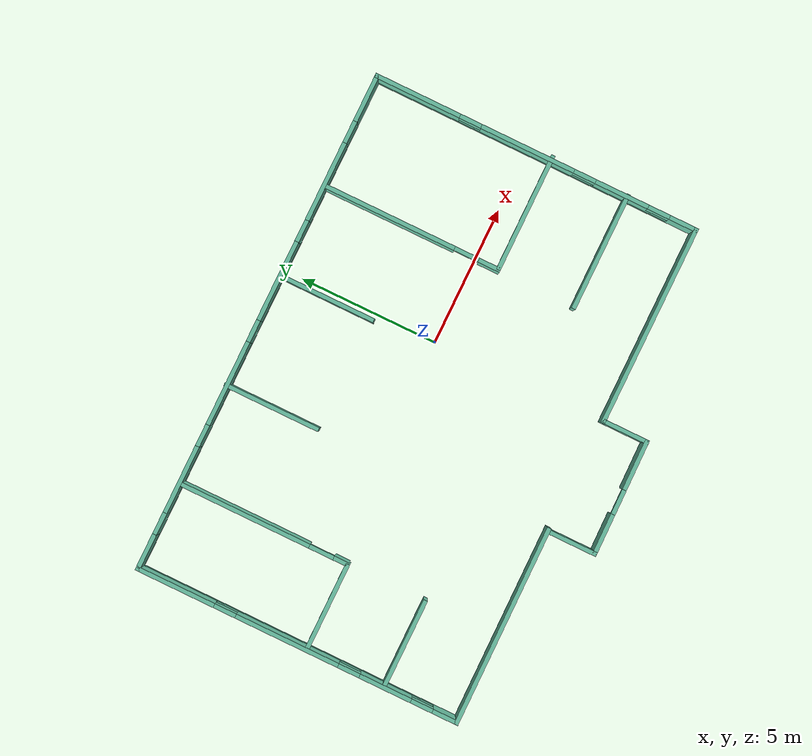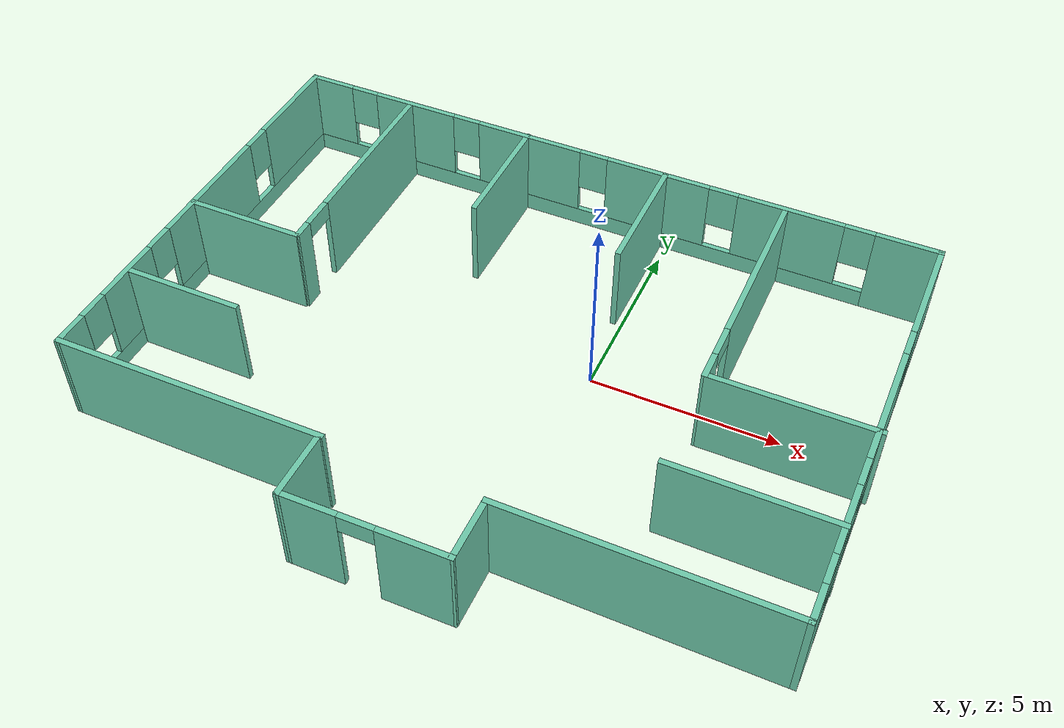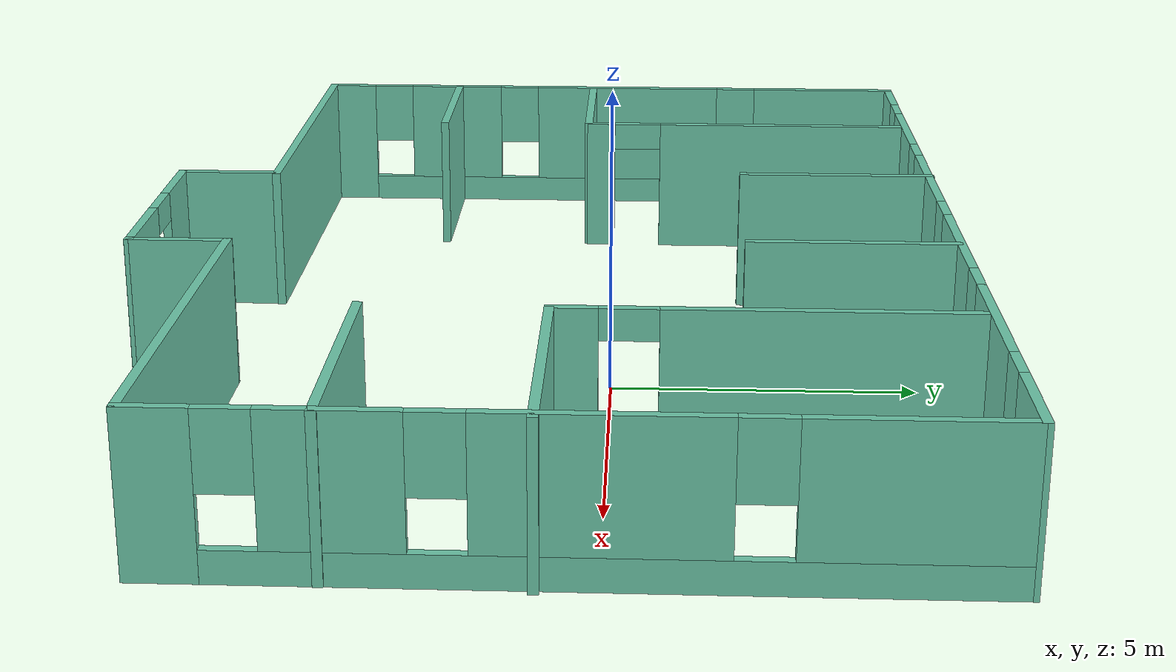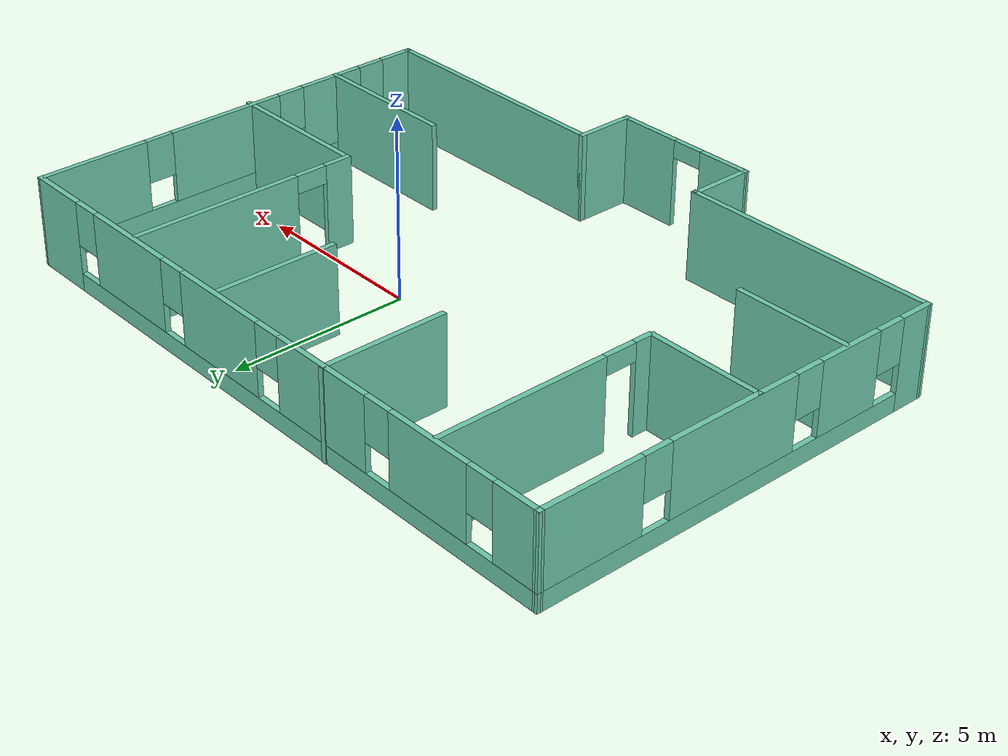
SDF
<?xml version='1.0'?>
<sdf version='1.6'>
  <model name='ER_building'>
    <pose frame=''>-1.93816 -1.11842 0 0 -0 0</pose>
    <link name='Wall_10'>
      <collision name='Wall_10_Collision'>
        <geometry>
          <box>
            <size>7.29057 0.15 2.5</size>
          </box>
        </geometry>
        <pose frame=''>0 0 1.25 0 -0 0</pose>
      </collision>
      <visual name='Wall_10_Visual'>
        <pose frame=''>0 0 1.25 0 -0 0</pose>
        <geometry>
          <box>
            <size>7.29057 0.15 2.5</size>
          </box>
        </geometry>
        <material>
          <script>
            <uri>file://media/materials/scripts/gazebo.material</uri>
            <name>Gazebo/Grey</name>
          </script>
          <ambient>0.435294 0.796078 0.67451 1</ambient>
        </material>
        <meta>
          <layer>0</layer>
        </meta>
      </visual>
      <pose frame=''>-5.64334 -5.06011 0 0 0 -3.13593</pose>
    </link>
    <link name='Wall_11'>
      <pose frame=''>-9.21357 0.84466 0 0 -0 1.5708</pose>
      <visual name='Wall_11_Visual_0'>
        <pose frame=''>-5.51337 0 1.25 0 -0 0</pose>
        <geometry>
          <box>
            <size>0.973269 0.15 2.5</size>
          </box>
        </geometry>
        <material>
          <script>
            <uri>file://media/materials/scripts/gazebo.material</uri>
            <name>Gazebo/Grey</name>
          </script>
          <ambient>0.435294 0.796078 0.67451 1</ambient>
        </material>
        <meta>
          <layer>0</layer>
        </meta>
      </visual>
      <collision name='Wall_11_Collision_0'>
        <geometry>
          <box>
            <size>0.973269 0.15 2.5</size>
          </box>
        </geometry>
        <pose frame=''>-5.51337 0 1.25 0 -0 0</pose>
      </collision>
      <visual name='Wall_11_Visual_1'>
        <pose frame=''>0.486634 0 0.25 0 -0 0</pose>
        <geometry>
          <box>
            <size>11.0267 0.15 0.5</size>
          </box>
        </geometry>
        <material>
          <script>
            <uri>file://media/materials/scripts/gazebo.material</uri>
            <name>Gazebo/Grey</name>
          </script>
          <ambient>0.435294 0.796078 0.67451 1</ambient>
        </material>
        <meta>
          <layer>0</layer>
        </meta>
      </visual>
      <collision name='Wall_11_Collision_1'>
        <geometry>
          <box>
            <size>11.0267 0.15 0.5</size>
          </box>
        </geometry>
        <pose frame=''>0.486634 0 0.25 0 -0 0</pose>
      </collision>
      <visual name='Wall_11_Visual_2'>
        <pose frame=''>-3.27147 0 1.5 0 -0 0</pose>
        <geometry>
          <box>
            <size>1.91052 0.15 2</size>
          </box>
        </geometry>
        <material>
          <script>
            <uri>file://media/materials/scripts/gazebo.material</uri>
            <name>Gazebo/Grey</name>
          </script>
          <ambient>0.435294 0.796078 0.67451 1</ambient>
        </material>
        <meta>
          <layer>0</layer>
        </meta>
      </visual>
      <collision name='Wall_11_Collision_2'>
        <geometry>
          <box>
            <size>1.91052 0.15 2</size>
          </box>
        </geometry>
        <pose frame=''>-3.27147 0 1.5 0 -0 0</pose>
      </collision>
      <visual name='Wall_11_Visual_3'>
        <pose frame=''>0.38976 0 1.5 0 -0 0</pose>
        <geometry>
          <box>
            <size>3.81194 0.15 2</size>
          </box>
        </geometry>
        <material>
          <script>
            <uri>file://media/materials/scripts/gazebo.material</uri>
            <name>Gazebo/Grey</name>
          </script>
          <ambient>0.435294 0.796078 0.67451 1</ambient>
        </material>
        <meta>
          <layer>0</layer>
        </meta>
      </visual>
      <collision name='Wall_11_Collision_3'>
        <geometry>
          <box>
            <size>3.81194 0.15 2</size>
          </box>
        </geometry>
        <pose frame=''>0.38976 0 1.5 0 -0 0</pose>
      </collision>
      <visual name='Wall_11_Visual_4'>
        <pose frame=''>4.54786 0 1.5 0 -0 0</pose>
        <geometry>
          <box>
            <size>2.90427 0.15 2</size>
          </box>
        </geometry>
        <material>
          <script>
            <uri>file://media/materials/scripts/gazebo.material</uri>
            <name>Gazebo/Grey</name>
          </script>
          <ambient>0.435294 0.796078 0.67451 1</ambient>
        </material>
        <meta>
          <layer>0</layer>
        </meta>
      </visual>
      <collision name='Wall_11_Collision_4'>
        <geometry>
          <box>
            <size>2.90427 0.15 2</size>
          </box>
        </geometry>
        <pose frame=''>4.54786 0 1.5 0 -0 0</pose>
      </collision>
      <visual name='Wall_11_Visual_5'>
        <pose frame=''>-4.62673 0 1.9 0 -0 0</pose>
        <geometry>
          <box>
            <size>0.8 0.15 1.2</size>
          </box>
        </geometry>
        <material>
          <script>
            <uri>file://media/materials/scripts/gazebo.material</uri>
            <name>Gazebo/Grey</name>
          </script>
          <ambient>0.435294 0.796078 0.67451 1</ambient>
        </material>
        <meta>
          <layer>0</layer>
        </meta>
      </visual>
      <collision name='Wall_11_Collision_5'>
        <geometry>
          <box>
            <size>0.8 0.15 1.2</size>
          </box>
        </geometry>
        <pose frame=''>-4.62673 0 1.9 0 -0 0</pose>
      </collision>
      <visual name='Wall_11_Visual_6'>
        <pose frame=''>-1.91621 0 1.9 0 -0 0</pose>
        <geometry>
          <box>
            <size>0.8 0.15 1.2</size>
          </box>
        </geometry>
        <material>
          <script>
            <uri>file://media/materials/scripts/gazebo.material</uri>
            <name>Gazebo/Grey</name>
          </script>
          <ambient>0.435294 0.796078 0.67451 1</ambient>
        </material>
        <meta>
          <layer>0</layer>
        </meta>
      </visual>
      <collision name='Wall_11_Collision_6'>
        <geometry>
          <box>
            <size>0.8 0.15 1.2</size>
          </box>
        </geometry>
        <pose frame=''>-1.91621 0 1.9 0 -0 0</pose>
      </collision>
      <visual name='Wall_11_Visual_7'>
        <pose frame=''>2.69573 0 1.9 0 -0 0</pose>
        <geometry>
          <box>
            <size>0.8 0.15 1.2</size>
          </box>
        </geometry>
        <material>
          <script>
            <uri>file://media/materials/scripts/gazebo.material</uri>
            <name>Gazebo/Grey</name>
          </script>
          <ambient>0.435294 0.796078 0.67451 1</ambient>
        </material>
        <meta>
          <layer>0</layer>
        </meta>
      </visual>
      <collision name='Wall_11_Collision_7'>
        <geometry>
          <box>
            <size>0.8 0.15 1.2</size>
          </box>
        </geometry>
        <pose frame=''>2.69573 0 1.9 0 -0 0</pose>
      </collision>
    </link>
    <link name='Wall_14'>
      <collision name='Wall_14_Collision'>
        <geometry>
          <box>
            <size>7.25 0.15 2.5</size>
          </box>
        </geometry>
        <pose frame=''>0 0 1.25 0 -0 0</pose>
      </collision>
      <visual name='Wall_14_Visual'>
        <pose frame=''>0 0 1.25 0 -0 0</pose>
        <geometry>
          <box>
            <size>7.25 0.15 2.5</size>
          </box>
        </geometry>
        <material>
          <script>
            <uri>file://media/materials/scripts/gazebo.material</uri>
            <name>Gazebo/Grey</name>
          </script>
          <ambient>0.435294 0.796078 0.67451 1</ambient>
        </material>
        <meta>
          <layer>0</layer>
        </meta>
      </visual>
      <pose frame=''>5.56316 -5.11758 0 0 -0 0</pose>
    </link>
    <link name='Wall_16'>
      <collision name='Wall_16_Collision'>
        <geometry>
          <box>
            <size>1.75 0.15 2.5</size>
          </box>
        </geometry>
        <pose frame=''>0 0 1.25 0 -0 0</pose>
      </collision>
      <visual name='Wall_16_Visual'>
        <pose frame=''>0 0 1.25 0 -0 0</pose>
        <geometry>
          <box>
            <size>1.75 0.15 2.5</size>
          </box>
        </geometry>
        <material>
          <script>
            <uri>file://media/materials/scripts/gazebo.material</uri>
            <name>Gazebo/Grey</name>
          </script>
          <ambient>0.435294 0.796078 0.67451 1</ambient>
        </material>
        <meta>
          <layer>0</layer>
        </meta>
      </visual>
      <pose frame=''>2.01316 -5.91758 0 0 0 -1.5708</pose>
    </link>
    <link name='Wall_17'>
      <pose frame=''>-0.050206 -6.74668 0 0 0 -3.12749</pose>
      <visual name='Wall_17_Visual_0'>
        <pose frame=''>-1.21254 0 1.25 0 -0 0</pose>
        <geometry>
          <box>
            <size>1.85205 0.15 2.5</size>
          </box>
        </geometry>
        <material>
          <script>
            <uri>file://media/materials/scripts/gazebo.material</uri>
            <name>Gazebo/Grey</name>
          </script>
          <ambient>0.435294 0.796078 0.67451 1</ambient>
        </material>
        <meta>
          <layer>0</layer>
        </meta>
      </visual>
      <collision name='Wall_17_Collision_0'>
        <geometry>
          <box>
            <size>1.85205 0.15 2.5</size>
          </box>
        </geometry>
        <pose frame=''>-1.21254 0 1.25 0 -0 0</pose>
      </collision>
      <visual name='Wall_17_Visual_1'>
        <pose frame=''>1.37603 0 1.25 0 -0 0</pose>
        <geometry>
          <box>
            <size>1.52508 0.15 2.5</size>
          </box>
        </geometry>
        <material>
          <script>
            <uri>file://media/materials/scripts/gazebo.material</uri>
            <name>Gazebo/Grey</name>
          </script>
          <ambient>0.435294 0.796078 0.67451 1</ambient>
        </material>
        <meta>
          <layer>0</layer>
        </meta>
      </visual>
      <collision name='Wall_17_Collision_1'>
        <geometry>
          <box>
            <size>1.52508 0.15 2.5</size>
          </box>
        </geometry>
        <pose frame=''>1.37603 0 1.25 0 -0 0</pose>
      </collision>
      <visual name='Wall_17_Visual_2'>
        <pose frame=''>0.163486 0 2.25 0 -0 0</pose>
        <geometry>
          <box>
            <size>0.9 0.15 0.5</size>
          </box>
        </geometry>
        <material>
          <script>
            <uri>file://media/materials/scripts/gazebo.material</uri>
            <name>Gazebo/Grey</name>
          </script>
          <ambient>0.435294 0.796078 0.67451 1</ambient>
        </material>
        <meta>
          <layer>0</layer>
        </meta>
      </visual>
      <collision name='Wall_17_Collision_2'>
        <geometry>
          <box>
            <size>0.9 0.15 0.5</size>
          </box>
        </geometry>
        <pose frame=''>0.163486 0 2.25 0 -0 0</pose>
      </collision>
    </link>
    <link name='Wall_19'>
      <pose frame=''>9.11316 0.807418 0 0 -0 1.5708</pose>
      <visual name='Wall_19_Visual_0'>
        <pose frame=''>-5.47452 0 1.25 0 -0 0</pose>
        <geometry>
          <box>
            <size>1.05097 0.15 2.5</size>
          </box>
        </geometry>
        <material>
          <script>
            <uri>file://media/materials/scripts/gazebo.material</uri>
            <name>Gazebo/Grey</name>
          </script>
          <ambient>0.435294 0.796078 0.67451 1</ambient>
        </material>
        <meta>
          <layer>0</layer>
        </meta>
      </visual>
      <collision name='Wall_19_Collision_0'>
        <geometry>
          <box>
            <size>1.05097 0.15 2.5</size>
          </box>
        </geometry>
        <pose frame=''>-5.47452 0 1.25 0 -0 0</pose>
      </collision>
      <visual name='Wall_19_Visual_1'>
        <pose frame=''>0.525483 0 0.25 0 -0 0</pose>
        <geometry>
          <box>
            <size>10.949 0.15 0.5</size>
          </box>
        </geometry>
        <material>
          <script>
            <uri>file://media/materials/scripts/gazebo.material</uri>
            <name>Gazebo/Grey</name>
          </script>
          <ambient>0.435294 0.796078 0.67451 1</ambient>
        </material>
        <meta>
          <layer>0</layer>
        </meta>
      </visual>
      <collision name='Wall_19_Collision_1'>
        <geometry>
          <box>
            <size>10.949 0.15 0.5</size>
          </box>
        </geometry>
        <pose frame=''>0.525483 0 0.25 0 -0 0</pose>
      </collision>
      <visual name='Wall_19_Visual_2'>
        <pose frame=''>-3.17354 0 1.5 0 -0 0</pose>
        <geometry>
          <box>
            <size>1.95098 0.15 2</size>
          </box>
        </geometry>
        <material>
          <script>
            <uri>file://media/materials/scripts/gazebo.material</uri>
            <name>Gazebo/Grey</name>
          </script>
          <ambient>0.435294 0.796078 0.67451 1</ambient>
        </material>
        <meta>
          <layer>0</layer>
        </meta>
      </visual>
      <collision name='Wall_19_Collision_2'>
        <geometry>
          <box>
            <size>1.95098 0.15 2</size>
          </box>
        </geometry>
        <pose frame=''>-3.17354 0 1.5 0 -0 0</pose>
      </collision>
      <visual name='Wall_19_Visual_3'>
        <pose frame=''>0.325863 0 1.5 0 -0 0</pose>
        <geometry>
          <box>
            <size>3.44784 0.15 2</size>
          </box>
        </geometry>
        <material>
          <script>
            <uri>file://media/materials/scripts/gazebo.material</uri>
            <name>Gazebo/Grey</name>
          </script>
          <ambient>0.435294 0.796078 0.67451 1</ambient>
        </material>
        <meta>
          <layer>0</layer>
        </meta>
      </visual>
      <collision name='Wall_19_Collision_3'>
        <geometry>
          <box>
            <size>3.44784 0.15 2</size>
          </box>
        </geometry>
        <pose frame=''>0.325863 0 1.5 0 -0 0</pose>
      </collision>
      <visual name='Wall_19_Visual_4'>
        <pose frame=''>4.42489 0 1.5 0 -0 0</pose>
        <geometry>
          <box>
            <size>3.15022 0.15 2</size>
          </box>
        </geometry>
        <material>
          <script>
            <uri>file://media/materials/scripts/gazebo.material</uri>
            <name>Gazebo/Grey</name>
          </script>
          <ambient>0.435294 0.796078 0.67451 1</ambient>
        </material>
        <meta>
          <layer>0</layer>
        </meta>
      </visual>
      <collision name='Wall_19_Collision_4'>
        <geometry>
          <box>
            <size>3.15022 0.15 2</size>
          </box>
        </geometry>
        <pose frame=''>4.42489 0 1.5 0 -0 0</pose>
      </collision>
      <visual name='Wall_19_Visual_5'>
        <pose frame=''>-4.54903 0 1.9 0 -0 0</pose>
        <geometry>
          <box>
            <size>0.8 0.15 1.2</size>
          </box>
        </geometry>
        <material>
          <script>
            <uri>file://media/materials/scripts/gazebo.material</uri>
            <name>Gazebo/Grey</name>
          </script>
          <ambient>0.435294 0.796078 0.67451 1</ambient>
        </material>
        <meta>
          <layer>0</layer>
        </meta>
      </visual>
      <collision name='Wall_19_Collision_5'>
        <geometry>
          <box>
            <size>0.8 0.15 1.2</size>
          </box>
        </geometry>
        <pose frame=''>-4.54903 0 1.9 0 -0 0</pose>
      </collision>
      <visual name='Wall_19_Visual_6'>
        <pose frame=''>-1.79805 0 1.9 0 -0 0</pose>
        <geometry>
          <box>
            <size>0.8 0.15 1.2</size>
          </box>
        </geometry>
        <material>
          <script>
            <uri>file://media/materials/scripts/gazebo.material</uri>
            <name>Gazebo/Grey</name>
          </script>
          <ambient>0.435294 0.796078 0.67451 1</ambient>
        </material>
        <meta>
          <layer>0</layer>
        </meta>
      </visual>
      <collision name='Wall_19_Collision_6'>
        <geometry>
          <box>
            <size>0.8 0.15 1.2</size>
          </box>
        </geometry>
        <pose frame=''>-1.79805 0 1.9 0 -0 0</pose>
      </collision>
      <visual name='Wall_19_Visual_7'>
        <pose frame=''>2.44978 0 1.9 0 -0 0</pose>
        <geometry>
          <box>
            <size>0.8 0.15 1.2</size>
          </box>
        </geometry>
        <material>
          <script>
            <uri>file://media/materials/scripts/gazebo.material</uri>
            <name>Gazebo/Grey</name>
          </script>
          <ambient>0.435294 0.796078 0.67451 1</ambient>
        </material>
        <meta>
          <layer>0</layer>
        </meta>
      </visual>
      <collision name='Wall_19_Collision_7'>
        <geometry>
          <box>
            <size>0.8 0.15 1.2</size>
          </box>
        </geometry>
        <pose frame=''>2.44978 0 1.9 0 -0 0</pose>
      </collision>
    </link>
    <link name='Wall_21'>
      <pose frame=''>-0.050206 6.75104 0 0 -0 3.13956</pose>
      <visual name='Wall_21_Visual_0'>
        <pose frame=''>-8.35916 0 1.25 0 -0 0</pose>
        <geometry>
          <box>
            <size>1.75844 0.15 2.5</size>
          </box>
        </geometry>
        <material>
          <script>
            <uri>file://media/materials/scripts/gazebo.material</uri>
            <name>Gazebo/Grey</name>
          </script>
          <ambient>0.435294 0.796078 0.67451 1</ambient>
        </material>
        <meta>
          <layer>0</layer>
        </meta>
      </visual>
      <collision name='Wall_21_Collision_0'>
        <geometry>
          <box>
            <size>1.75844 0.15 2.5</size>
          </box>
        </geometry>
        <pose frame=''>-8.35916 0 1.25 0 -0 0</pose>
      </collision>
      <visual name='Wall_21_Visual_1'>
        <pose frame=''>0.87922 0 0.25 0 -0 0</pose>
        <geometry>
          <box>
            <size>16.7183 0.15 0.5</size>
          </box>
        </geometry>
        <material>
          <script>
            <uri>file://media/materials/scripts/gazebo.material</uri>
            <name>Gazebo/Grey</name>
          </script>
          <ambient>0.435294 0.796078 0.67451 1</ambient>
        </material>
        <meta>
          <layer>0</layer>
        </meta>
      </visual>
      <collision name='Wall_21_Collision_1'>
        <geometry>
          <box>
            <size>16.7183 0.15 0.5</size>
          </box>
        </geometry>
        <pose frame=''>0.87922 0 0.25 0 -0 0</pose>
      </collision>
      <visual name='Wall_21_Visual_2'>
        <pose frame=''>-5.23914 0 1.5 0 -0 0</pose>
        <geometry>
          <box>
            <size>2.88162 0.15 2</size>
          </box>
        </geometry>
        <material>
          <script>
            <uri>file://media/materials/scripts/gazebo.material</uri>
            <name>Gazebo/Grey</name>
          </script>
          <ambient>0.435294 0.796078 0.67451 1</ambient>
        </material>
        <meta>
          <layer>0</layer>
        </meta>
      </visual>
      <collision name='Wall_21_Collision_2'>
        <geometry>
          <box>
            <size>2.88162 0.15 2</size>
          </box>
        </geometry>
        <pose frame=''>-5.23914 0 1.5 0 -0 0</pose>
      </collision>
      <visual name='Wall_21_Visual_3'>
        <pose frame=''>-1.53737 0 1.5 0 -0 0</pose>
        <geometry>
          <box>
            <size>2.92191 0.15 2</size>
          </box>
        </geometry>
        <material>
          <script>
            <uri>file://media/materials/scripts/gazebo.material</uri>
            <name>Gazebo/Grey</name>
          </script>
          <ambient>0.435294 0.796078 0.67451 1</ambient>
        </material>
        <meta>
          <layer>0</layer>
        </meta>
      </visual>
      <collision name='Wall_21_Collision_3'>
        <geometry>
          <box>
            <size>2.92191 0.15 2</size>
          </box>
        </geometry>
        <pose frame=''>-1.53737 0 1.5 0 -0 0</pose>
      </collision>
      <visual name='Wall_21_Visual_4'>
        <pose frame=''>2.26532 0 1.5 0 -0 0</pose>
        <geometry>
          <box>
            <size>3.08348 0.15 2</size>
          </box>
        </geometry>
        <material>
          <script>
            <uri>file://media/materials/scripts/gazebo.material</uri>
            <name>Gazebo/Grey</name>
          </script>
          <ambient>0.435294 0.796078 0.67451 1</ambient>
        </material>
        <meta>
          <layer>0</layer>
        </meta>
      </visual>
      <collision name='Wall_21_Collision_4'>
        <geometry>
          <box>
            <size>3.08348 0.15 2</size>
          </box>
        </geometry>
        <pose frame=''>2.26532 0 1.5 0 -0 0</pose>
      </collision>
      <visual name='Wall_21_Visual_5'>
        <pose frame=''>5.84571 0 1.5 0 -0 0</pose>
        <geometry>
          <box>
            <size>2.47731 0.15 2</size>
          </box>
        </geometry>
        <material>
          <script>
            <uri>file://media/materials/scripts/gazebo.material</uri>
            <name>Gazebo/Grey</name>
          </script>
          <ambient>0.435294 0.796078 0.67451 1</ambient>
        </material>
        <meta>
          <layer>0</layer>
        </meta>
      </visual>
      <collision name='Wall_21_Collision_5'>
        <geometry>
          <box>
            <size>2.47731 0.15 2</size>
          </box>
        </geometry>
        <pose frame=''>5.84571 0 1.5 0 -0 0</pose>
      </collision>
      <visual name='Wall_21_Visual_6'>
        <pose frame=''>8.56137 0 1.5 0 -0 0</pose>
        <geometry>
          <box>
            <size>1.35402 0.15 2</size>
          </box>
        </geometry>
        <material>
          <script>
            <uri>file://media/materials/scripts/gazebo.material</uri>
            <name>Gazebo/Grey</name>
          </script>
          <ambient>0.435294 0.796078 0.67451 1</ambient>
        </material>
        <meta>
          <layer>0</layer>
        </meta>
      </visual>
      <collision name='Wall_21_Collision_6'>
        <geometry>
          <box>
            <size>1.35402 0.15 2</size>
          </box>
        </geometry>
        <pose frame=''>8.56137 0 1.5 0 -0 0</pose>
      </collision>
      <visual name='Wall_21_Visual_7'>
        <pose frame=''>-7.07994 0 1.9 0 -0 0</pose>
        <geometry>
          <box>
            <size>0.8 0.15 1.2</size>
          </box>
        </geometry>
        <material>
          <script>
            <uri>file://media/materials/scripts/gazebo.material</uri>
            <name>Gazebo/Grey</name>
          </script>
          <ambient>0.435294 0.796078 0.67451 1</ambient>
        </material>
        <meta>
          <layer>0</layer>
        </meta>
      </visual>
      <collision name='Wall_21_Collision_7'>
        <geometry>
          <box>
            <size>0.8 0.15 1.2</size>
          </box>
        </geometry>
        <pose frame=''>-7.07994 0 1.9 0 -0 0</pose>
      </collision>
      <visual name='Wall_21_Visual_8'>
        <pose frame=''>-3.39833 0 1.9 0 -0 0</pose>
        <geometry>
          <box>
            <size>0.8 0.15 1.2</size>
          </box>
        </geometry>
        <material>
          <script>
            <uri>file://media/materials/scripts/gazebo.material</uri>
            <name>Gazebo/Grey</name>
          </script>
          <ambient>0.435294 0.796078 0.67451 1</ambient>
        </material>
        <meta>
          <layer>0</layer>
        </meta>
      </visual>
      <collision name='Wall_21_Collision_8'>
        <geometry>
          <box>
            <size>0.8 0.15 1.2</size>
          </box>
        </geometry>
        <pose frame=''>-3.39833 0 1.9 0 -0 0</pose>
      </collision>
      <visual name='Wall_21_Visual_9'>
        <pose frame=''>0.323578 0 1.9 0 -0 0</pose>
        <geometry>
          <box>
            <size>0.8 0.15 1.2</size>
          </box>
        </geometry>
        <material>
          <script>
            <uri>file://media/materials/scripts/gazebo.material</uri>
            <name>Gazebo/Grey</name>
          </script>
          <ambient>0.435294 0.796078 0.67451 1</ambient>
        </material>
        <meta>
          <layer>0</layer>
        </meta>
      </visual>
      <collision name='Wall_21_Collision_9'>
        <geometry>
          <box>
            <size>0.8 0.15 1.2</size>
          </box>
        </geometry>
        <pose frame=''>0.323578 0 1.9 0 -0 0</pose>
      </collision>
      <visual name='Wall_21_Visual_10'>
        <pose frame=''>4.20706 0 1.9 0 -0 0</pose>
        <geometry>
          <box>
            <size>0.8 0.15 1.2</size>
          </box>
        </geometry>
        <material>
          <script>
            <uri>file://media/materials/scripts/gazebo.material</uri>
            <name>Gazebo/Grey</name>
          </script>
          <ambient>0.435294 0.796078 0.67451 1</ambient>
        </material>
        <meta>
          <layer>0</layer>
        </meta>
      </visual>
      <collision name='Wall_21_Collision_10'>
        <geometry>
          <box>
            <size>0.8 0.15 1.2</size>
          </box>
        </geometry>
        <pose frame=''>4.20706 0 1.9 0 -0 0</pose>
      </collision>
      <visual name='Wall_21_Visual_11'>
        <pose frame=''>7.48437 0 1.9 0 -0 0</pose>
        <geometry>
          <box>
            <size>0.8 0.15 1.2</size>
          </box>
        </geometry>
        <material>
          <script>
            <uri>file://media/materials/scripts/gazebo.material</uri>
            <name>Gazebo/Grey</name>
          </script>
          <ambient>0.435294 0.796078 0.67451 1</ambient>
        </material>
        <meta>
          <layer>0</layer>
        </meta>
      </visual>
      <collision name='Wall_21_Collision_11'>
        <geometry>
          <box>
            <size>0.8 0.15 1.2</size>
          </box>
        </geometry>
        <pose frame=''>7.48437 0 1.9 0 -0 0</pose>
      </collision>
    </link>
    <link name='Wall_23'>
      <pose frame=''>-6.03776 3.60547 0 0 0 -1.5708</pose>
      <visual name='Wall_23_Visual_0'>
        <pose frame=''>-0.723343 0 1.25 0 -0 0</pose>
        <geometry>
          <box>
            <size>4.80331 0.15 2.5</size>
          </box>
        </geometry>
        <material>
          <script>
            <uri>file://media/materials/scripts/gazebo.material</uri>
            <name>Gazebo/Grey</name>
          </script>
          <ambient>0.435294 0.796078 0.67451 1</ambient>
        </material>
        <meta>
          <layer>0</layer>
        </meta>
      </visual>
      <collision name='Wall_23_Collision_0'>
        <geometry>
          <box>
            <size>4.80331 0.15 2.5</size>
          </box>
        </geometry>
        <pose frame=''>-0.723343 0 1.25 0 -0 0</pose>
      </collision>
      <visual name='Wall_23_Visual_1'>
        <pose frame=''>2.85166 0 1.25 0 -0 0</pose>
        <geometry>
          <box>
            <size>0.546686 0.15 2.5</size>
          </box>
        </geometry>
        <material>
          <script>
            <uri>file://media/materials/scripts/gazebo.material</uri>
            <name>Gazebo/Grey</name>
          </script>
          <ambient>0.435294 0.796078 0.67451 1</ambient>
        </material>
        <meta>
          <layer>0</layer>
        </meta>
      </visual>
      <collision name='Wall_23_Collision_1'>
        <geometry>
          <box>
            <size>0.546686 0.15 2.5</size>
          </box>
        </geometry>
        <pose frame=''>2.85166 0 1.25 0 -0 0</pose>
      </collision>
      <visual name='Wall_23_Visual_2'>
        <pose frame=''>2.12831 0 2.25 0 -0 0</pose>
        <geometry>
          <box>
            <size>0.9 0.15 0.5</size>
          </box>
        </geometry>
        <material>
          <script>
            <uri>file://media/materials/scripts/gazebo.material</uri>
            <name>Gazebo/Grey</name>
          </script>
          <ambient>0.435294 0.796078 0.67451 1</ambient>
        </material>
        <meta>
          <layer>0</layer>
        </meta>
      </visual>
      <collision name='Wall_23_Collision_2'>
        <geometry>
          <box>
            <size>0.9 0.15 0.5</size>
          </box>
        </geometry>
        <pose frame=''>2.12831 0 2.25 0 -0 0</pose>
      </collision>
    </link>
    <link name='Wall_25'>
      <collision name='Wall_25_Collision'>
        <geometry>
          <box>
            <size>3.5 0.15 2.5</size>
          </box>
        </geometry>
        <pose frame=''>0 0 1.25 0 -0 0</pose>
      </collision>
      <visual name='Wall_25_Visual'>
        <pose frame=''>0 0 1.25 0 -0 0</pose>
        <geometry>
          <box>
            <size>3.5 0.15 2.5</size>
          </box>
        </geometry>
        <material>
          <script>
            <uri>file://media/materials/scripts/gazebo.material</uri>
            <name>Gazebo/Grey</name>
          </script>
          <ambient>0.435294 0.796078 0.67451 1</ambient>
        </material>
        <meta>
          <layer>0</layer>
        </meta>
      </visual>
      <pose frame=''>-2.39676 5.10183 0 0 0 -1.5708</pose>
    </link>
    <link name='Wall_27'>
      <collision name='Wall_27_Collision'>
        <geometry>
          <box>
            <size>3.5 0.15 2.5</size>
          </box>
        </geometry>
        <pose frame=''>0 0 1.25 0 -0 0</pose>
      </collision>
      <visual name='Wall_27_Visual'>
        <pose frame=''>0 0 1.25 0 -0 0</pose>
        <geometry>
          <box>
            <size>3.5 0.15 2.5</size>
          </box>
        </geometry>
        <material>
          <script>
            <uri>file://media/materials/scripts/gazebo.material</uri>
            <name>Gazebo/Grey</name>
          </script>
          <ambient>0.435294 0.796078 0.67451 1</ambient>
        </material>
        <meta>
          <layer>0</layer>
        </meta>
      </visual>
      <pose frame=''>1.68926 5.02092 0 0 0 -1.5708</pose>
    </link>
    <link name='Wall_29'>
      <pose frame=''>5.04707 3.44001 0 0 0 -1.5708</pose>
      <visual name='Wall_29_Visual_0'>
        <pose frame=''>-0.848343 0 1.25 0 -0 0</pose>
        <geometry>
          <box>
            <size>4.80331 0.15 2.5</size>
          </box>
        </geometry>
        <material>
          <script>
            <uri>file://media/materials/scripts/gazebo.material</uri>
            <name>Gazebo/Grey</name>
          </script>
          <ambient>0.435294 0.796078 0.67451 1</ambient>
        </material>
        <meta>
          <layer>0</layer>
        </meta>
      </visual>
      <collision name='Wall_29_Collision_0'>
        <geometry>
          <box>
            <size>4.80331 0.15 2.5</size>
          </box>
        </geometry>
        <pose frame=''>-0.848343 0 1.25 0 -0 0</pose>
      </collision>
      <visual name='Wall_29_Visual_1'>
        <pose frame=''>2.85166 0 1.25 0 -0 0</pose>
        <geometry>
          <box>
            <size>0.796686 0.15 2.5</size>
          </box>
        </geometry>
        <material>
          <script>
            <uri>file://media/materials/scripts/gazebo.material</uri>
            <name>Gazebo/Grey</name>
          </script>
          <ambient>0.435294 0.796078 0.67451 1</ambient>
        </material>
        <meta>
          <layer>0</layer>
        </meta>
      </visual>
      <collision name='Wall_29_Collision_1'>
        <geometry>
          <box>
            <size>0.796686 0.15 2.5</size>
          </box>
        </geometry>
        <pose frame=''>2.85166 0 1.25 0 -0 0</pose>
      </collision>
      <visual name='Wall_29_Visual_2'>
        <pose frame=''>2.00331 0 2.25 0 -0 0</pose>
        <geometry>
          <box>
            <size>0.9 0.15 0.5</size>
          </box>
        </geometry>
        <material>
          <script>
            <uri>file://media/materials/scripts/gazebo.material</uri>
            <name>Gazebo/Grey</name>
          </script>
          <ambient>0.435294 0.796078 0.67451 1</ambient>
        </material>
        <meta>
          <layer>0</layer>
        </meta>
      </visual>
      <collision name='Wall_29_Collision_2'>
        <geometry>
          <box>
            <size>0.9 0.15 0.5</size>
          </box>
        </geometry>
        <pose frame=''>2.00331 0 2.25 0 -0 0</pose>
      </collision>
    </link>
    <link name='Wall_31'>
      <collision name='Wall_31_Collision'>
        <geometry>
          <box>
            <size>3.25 0.15 2.5</size>
          </box>
        </geometry>
        <pose frame=''>0 0 1.25 0 -0 0</pose>
      </collision>
      <visual name='Wall_31_Visual'>
        <pose frame=''>0 0 1.25 0 -0 0</pose>
        <geometry>
          <box>
            <size>3.25 0.15 2.5</size>
          </box>
        </geometry>
        <material>
          <script>
            <uri>file://media/materials/scripts/gazebo.material</uri>
            <name>Gazebo/Grey</name>
          </script>
          <ambient>0.435294 0.796078 0.67451 1</ambient>
        </material>
        <meta>
          <layer>0</layer>
        </meta>
      </visual>
      <pose frame=''>-7.60284 -2.36613 0 0 -0 0</pose>
    </link>
    <link name='Wall_33'>
      <collision name='Wall_33_Collision'>
        <geometry>
          <box>
            <size>3.25 0.15 2.5</size>
          </box>
        </geometry>
        <pose frame=''>0 0 1.25 0 -0 0</pose>
      </collision>
      <visual name='Wall_33_Visual'>
        <pose frame=''>0 0 1.25 0 -0 0</pose>
        <geometry>
          <box>
            <size>3.25 0.15 2.5</size>
          </box>
        </geometry>
        <material>
          <script>
            <uri>file://media/materials/scripts/gazebo.material</uri>
            <name>Gazebo/Grey</name>
          </script>
          <ambient>0.435294 0.796078 0.67451 1</ambient>
        </material>
        <meta>
          <layer>0</layer>
        </meta>
      </visual>
      <pose frame=''>-7.6433 0.50622 0 0 -0 0</pose>
    </link>
    <link name='Wall_35'>
      <collision name='Wall_35_Collision'>
        <geometry>
          <box>
            <size>4.25 0.15 2.5</size>
          </box>
        </geometry>
        <pose frame=''>0 0 1.25 0 -0 0</pose>
      </collision>
      <visual name='Wall_35_Visual'>
        <pose frame=''>0 0 1.25 0 -0 0</pose>
        <geometry>
          <box>
            <size>4.25 0.15 2.5</size>
          </box>
        </geometry>
        <material>
          <script>
            <uri>file://media/materials/scripts/gazebo.material</uri>
            <name>Gazebo/Grey</name>
          </script>
          <ambient>0.435294 0.796078 0.67451 1</ambient>
        </material>
        <meta>
          <layer>0</layer>
        </meta>
      </visual>
      <pose frame=''>7.08308 -2.5684 0 0 -0 3.14159</pose>
    </link>
    <link name='Wall_37'>
      <collision name='Wall_37_Collision'>
        <geometry>
          <box>
            <size>4.25 0.15 2.5</size>
          </box>
        </geometry>
        <pose frame=''>0 0 1.25 0 -0 0</pose>
      </collision>
      <visual name='Wall_37_Visual'>
        <pose frame=''>0 0 1.25 0 -0 0</pose>
        <geometry>
          <box>
            <size>4.25 0.15 2.5</size>
          </box>
        </geometry>
        <material>
          <script>
            <uri>file://media/materials/scripts/gazebo.material</uri>
            <name>Gazebo/Grey</name>
          </script>
          <ambient>0.435294 0.796078 0.67451 1</ambient>
        </material>
        <meta>
          <layer>0</layer>
        </meta>
      </visual>
      <pose frame=''>7.16399 0.263486 0 0 -0 3.14159</pose>
    </link>
    <link name='Wall_9'>
      <collision name='Wall_9_Collision'>
        <geometry>
          <box>
            <size>1.84544 0.15 2.5</size>
          </box>
        </geometry>
        <pose frame=''>0 0 1.25 0 -0 0</pose>
      </collision>
      <visual name='Wall_9_Visual'>
        <pose frame=''>0 0 1.25 0 -0 0</pose>
        <geometry>
          <box>
            <size>1.84544 0.15 2.5</size>
          </box>
        </geometry>
        <material>
          <script>
            <uri>file://media/materials/scripts/gazebo.material</uri>
            <name>Gazebo/Grey</name>
          </script>
          <ambient>0.435294 0.796078 0.67451 1</ambient>
        </material>
        <meta>
          <layer>0</layer>
        </meta>
      </visual>
      <pose frame=''>-2.11357 -5.92806 0 0 -0 1.5708</pose>
    </link>
    <static>1</static>
  </model>
</sdf>
